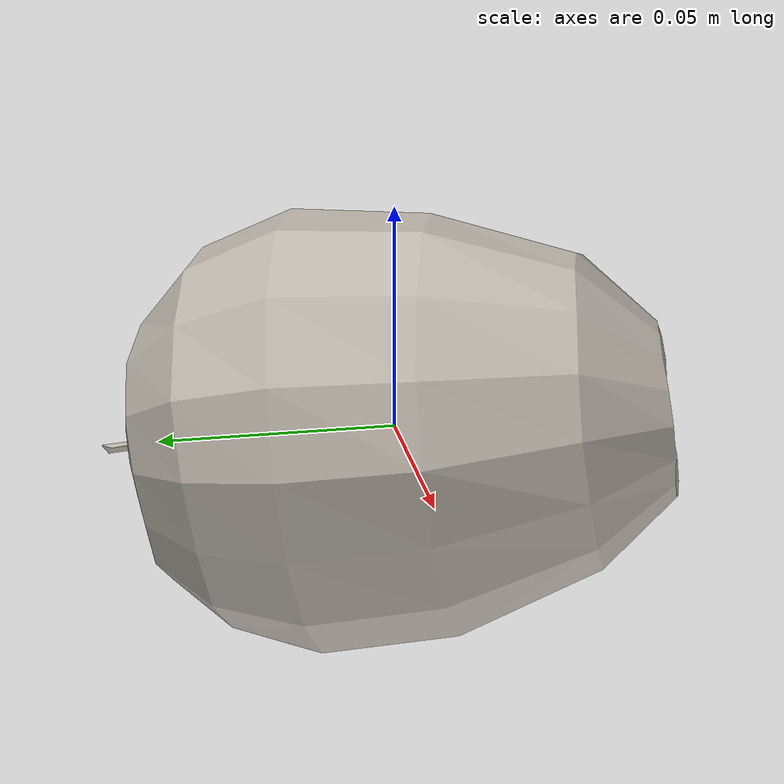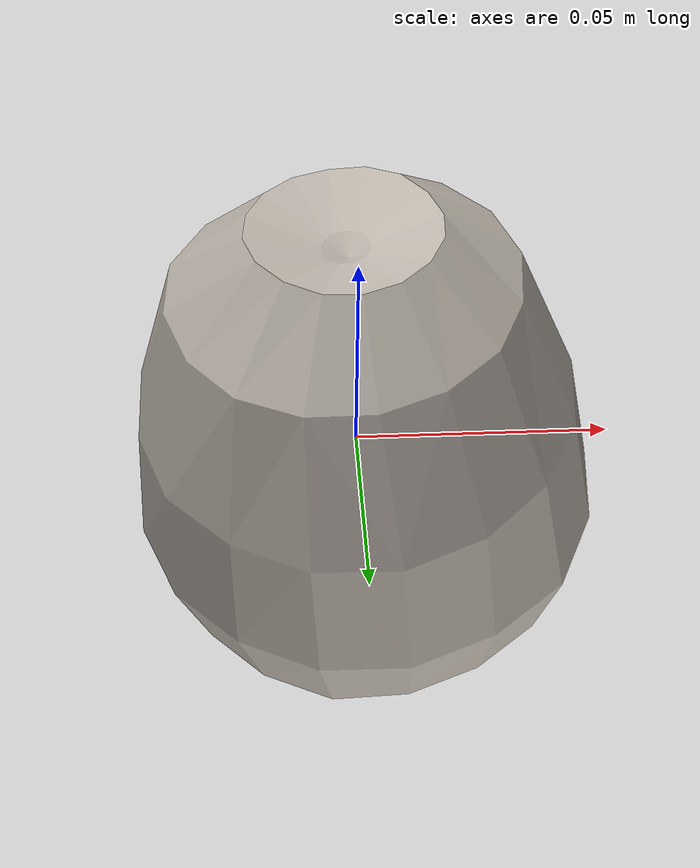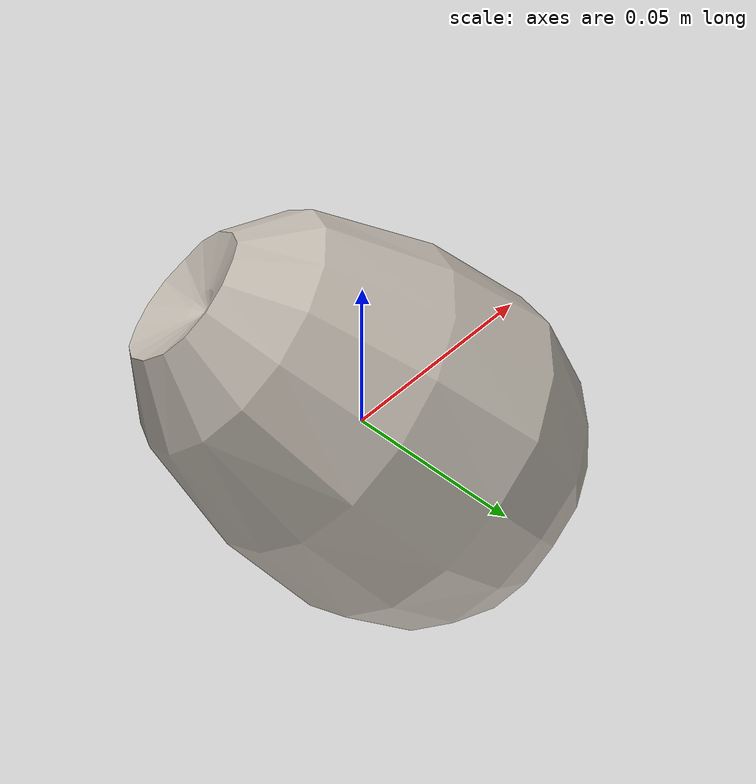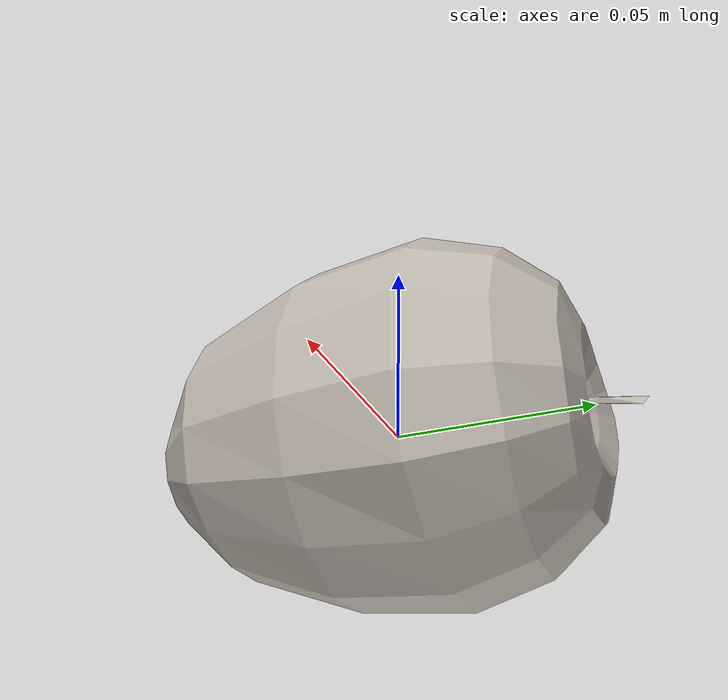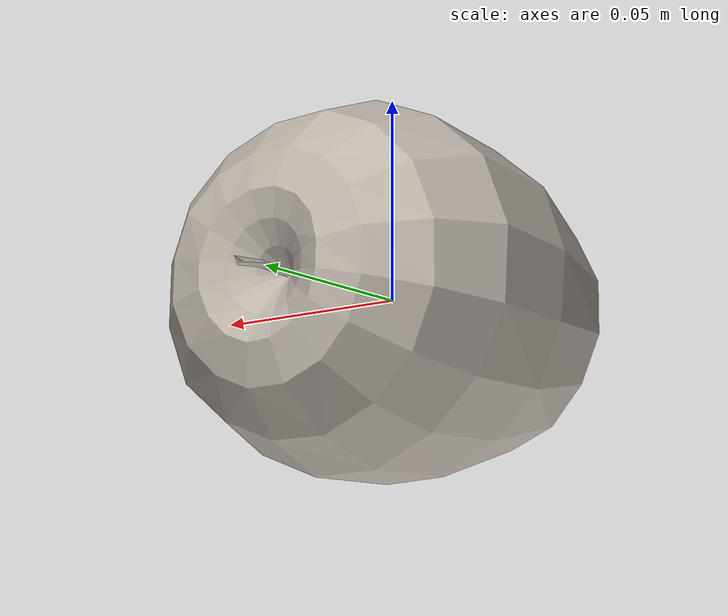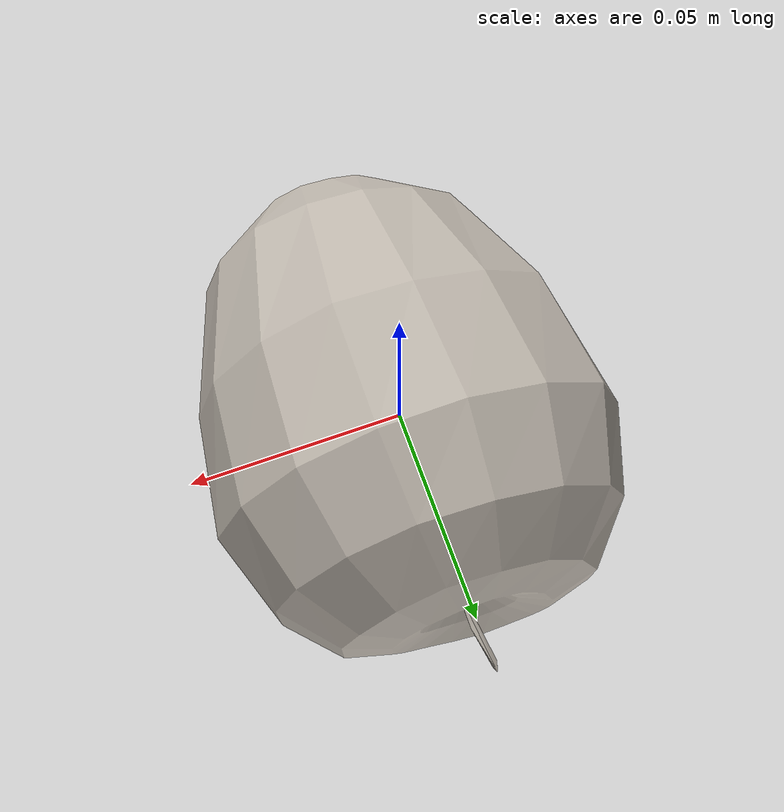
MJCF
<mujoco model="Apple_5">
  <compiler autolimits="true" boundmass="0.01" angle="radian"/>
  <default>
    <default class="/">
      <default class="__VISUAL_MJT__">
        <geom contype="0" conaffinity="0" group="0"/>
      </default>
      <default class="__STRUCTURAL_MJT__">
        <geom contype="8" conaffinity="15" group="4" friction="0.90000000000000002 0.90000000000000002 0.001" solref="0.025000000000000001 1" solimp="0.998 0.998 0.001"/>
      </default>
      <default class="__DYNAMIC_MJT__">
        <geom contype="1" conaffinity="15" group="4" friction="0.90000000000000002 0.90000000000000002 0.001" solref="0.025000000000000001 1" solimp="0.998 0.998 0.001"/>
      </default>
    </default>
  </default>
  <asset>
    <texture name="Apple1_Mat5" type="2d" file="Apple1_AlbedoTransparency5.png"/>
    <material name="material_Apple1_Mat5" class="/" texture="Apple1_Mat5" specular="0.5" shininess="0.5" rgba="1 1 1 1"/>
    <mesh name="Apple_5_apple_a5" class="/" file="Apple_5_apple_a5/Apple_5_apple_a5.obj" scale="1 1 1"/>
  </asset>
  <worldbody>
    <body name="Apple_5">
      <joint name="Apple_5_free" class="/" type="free" pos="0 0 0" axis="0 0 1" stiffness="0" range="0 0" armature="0" damping="0.10000000000000001" frictionloss="0"/>
      <body name="Apple_5_apple_a5" pos="-0 -0.0045999999999999999 0" quat="1 0 0 0">
        <geom name="Apple_5_apple_a5" class="__VISUAL_MJT__" type="mesh" material="material_Apple1_Mat5" shellinertia="false" mesh="Apple_5_apple_a5"/>
        <geom name="Apple_5_PrimitiveCollider_0" class="__DYNAMIC_MJT__" type="capsule" size="0.049297541379928589 0.010013643652200699" rgba="0 1 0 1" pos="-0 0.0046000001020729542 0" quat="0.70710678118654757 0.70710678118654746 0 0"/>
      </body>
    </body>
  </worldbody>
</mujoco>
